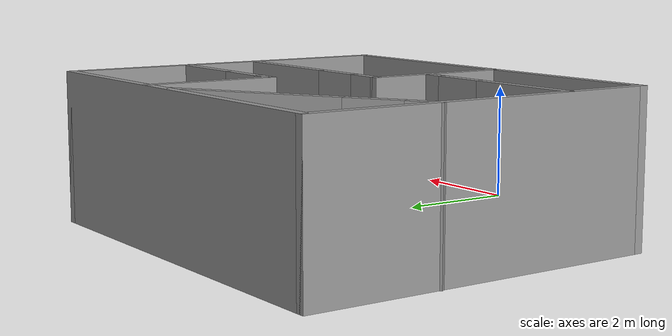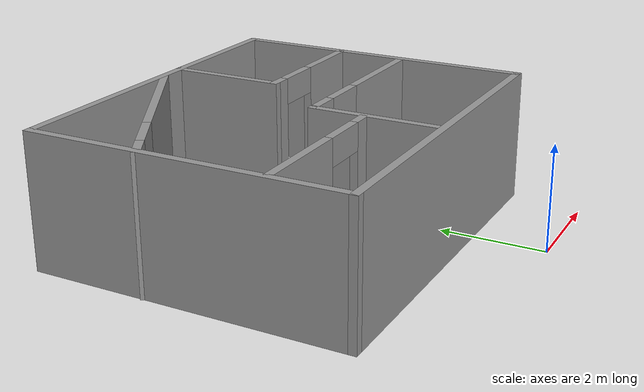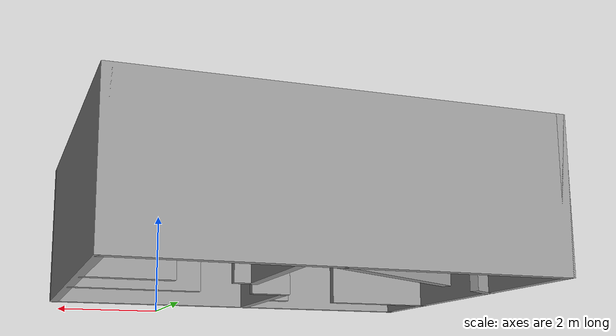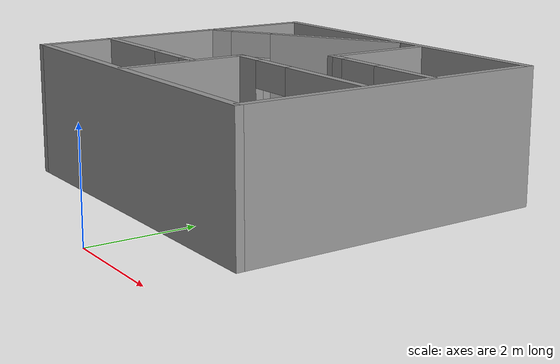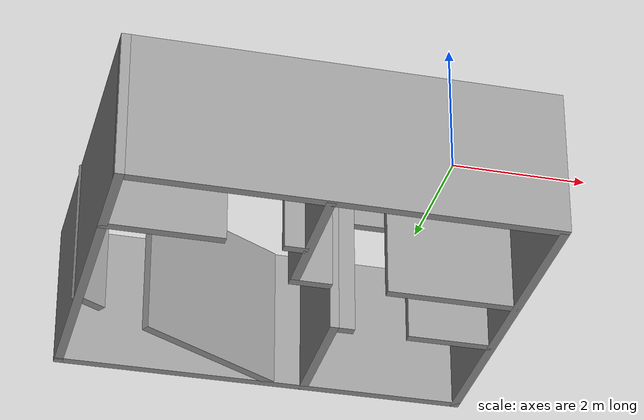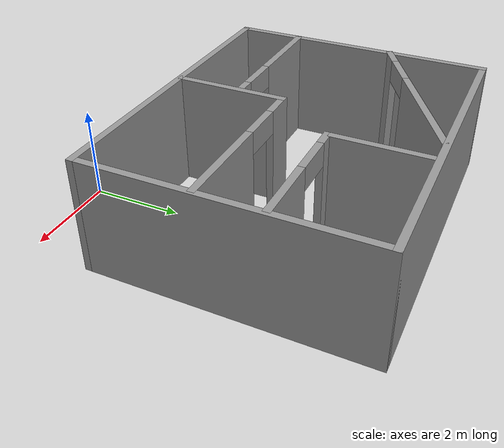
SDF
<?xml version='1.0'?>
<sdf version='1.6'>
  <model name='Untitled'>
    <pose frame=''>-1.23552 4.36471 0 0 -0 0</pose>
    <link name='Wall_12'>
      <collision name='Wall_12_Collision'>
        <geometry>
          <box>
            <size>7 0.15 2.5</size>
          </box>
        </geometry>
        <pose frame=''>0 0 1.25 0 -0 0</pose>
      </collision>
      <visual name='Wall_12_Visual'>
        <pose frame=''>0 0 1.25 0 -0 0</pose>
        <geometry>
          <box>
            <size>7 0.15 2.5</size>
          </box>
        </geometry>
        <material>
          <script>
            <uri>file://media/materials/scripts/gazebo.material</uri>
            <name>Gazebo/Grey</name>
          </script>
          <ambient>1 1 1 1</ambient>
        </material>
        <meta>
          <layer>0</layer>
        </meta>
      </visual>
      <pose frame=''>0.017489 2.925 0 0 -0 0</pose>
    </link>
    <link name='Wall_13'>
      <collision name='Wall_13_Collision'>
        <geometry>
          <box>
            <size>6 0.15 2.5</size>
          </box>
        </geometry>
        <pose frame=''>0 0 1.25 0 -0 0</pose>
      </collision>
      <visual name='Wall_13_Visual'>
        <pose frame=''>0 0 1.25 0 -0 0</pose>
        <geometry>
          <box>
            <size>6 0.15 2.5</size>
          </box>
        </geometry>
        <material>
          <script>
            <uri>file://media/materials/scripts/gazebo.material</uri>
            <name>Gazebo/Grey</name>
          </script>
          <ambient>1 1 1 1</ambient>
        </material>
        <meta>
          <layer>0</layer>
        </meta>
      </visual>
      <pose frame=''>3.44249 0 0 0 -0 -1.5708</pose>
    </link>
    <link name='Wall_14'>
      <collision name='Wall_14_Collision'>
        <geometry>
          <box>
            <size>7 0.15 2.5</size>
          </box>
        </geometry>
        <pose frame=''>0 0 1.25 0 -0 0</pose>
      </collision>
      <visual name='Wall_14_Visual'>
        <pose frame=''>0 0 1.25 0 -0 0</pose>
        <geometry>
          <box>
            <size>7 0.15 2.5</size>
          </box>
        </geometry>
        <material>
          <script>
            <uri>file://media/materials/scripts/gazebo.material</uri>
            <name>Gazebo/Grey</name>
          </script>
          <ambient>1 1 1 1</ambient>
        </material>
        <meta>
          <layer>0</layer>
        </meta>
      </visual>
      <pose frame=''>0.017489 -2.925 0 0 -0 3.14159</pose>
    </link>
    <link name='Wall_15'>
      <collision name='Wall_15_Collision'>
        <geometry>
          <box>
            <size>6 0.15 2.5</size>
          </box>
        </geometry>
        <pose frame=''>0 0 1.25 0 -0 0</pose>
      </collision>
      <visual name='Wall_15_Visual'>
        <pose frame=''>0 0 1.25 0 -0 0</pose>
        <geometry>
          <box>
            <size>6 0.15 2.5</size>
          </box>
        </geometry>
        <material>
          <script>
            <uri>file://media/materials/scripts/gazebo.material</uri>
            <name>Gazebo/Grey</name>
          </script>
          <ambient>1 1 1 1</ambient>
        </material>
        <meta>
          <layer>0</layer>
        </meta>
      </visual>
      <pose frame=''>-3.40751 0 0 0 -0 1.5708</pose>
    </link>
    <link name='Wall_22'>
      <pose frame=''>-1.63969 1.82728 0 0 -0 0.523599</pose>
      <visual name='Wall_22_Visual_0'>
        <pose frame=''>-1.84173 0 1.25 0 -0 0</pose>
        <geometry>
          <box>
            <size>0.566535 0.15 2.5</size>
          </box>
        </geometry>
        <material>
          <script>
            <uri>file://media/materials/scripts/gazebo.material</uri>
            <name>Gazebo/Grey</name>
          </script>
          <ambient>1 1 1 1</ambient>
        </material>
        <meta>
          <layer>0</layer>
        </meta>
      </visual>
      <collision name='Wall_22_Collision_0'>
        <geometry>
          <box>
            <size>0.566535 0.15 2.5</size>
          </box>
        </geometry>
        <pose frame=''>-1.84173 0 1.25 0 -0 0</pose>
      </collision>
      <visual name='Wall_22_Visual_1'>
        <pose frame=''>0.733268 0 1.25 0 -0 0</pose>
        <geometry>
          <box>
            <size>2.78347 0.15 2.5</size>
          </box>
        </geometry>
        <material>
          <script>
            <uri>file://media/materials/scripts/gazebo.material</uri>
            <name>Gazebo/Grey</name>
          </script>
          <ambient>1 1 1 1</ambient>
        </material>
        <meta>
          <layer>0</layer>
        </meta>
      </visual>
      <collision name='Wall_22_Collision_1'>
        <geometry>
          <box>
            <size>2.78347 0.15 2.5</size>
          </box>
        </geometry>
        <pose frame=''>0.733268 0 1.25 0 -0 0</pose>
      </collision>
      <visual name='Wall_22_Visual_2'>
        <pose frame=''>-1.10847 0 2.25 0 -0 0</pose>
        <geometry>
          <box>
            <size>0.9 0.15 0.5</size>
          </box>
        </geometry>
        <material>
          <script>
            <uri>file://media/materials/scripts/gazebo.material</uri>
            <name>Gazebo/Grey</name>
          </script>
          <ambient>1 1 1 1</ambient>
        </material>
        <meta>
          <layer>0</layer>
        </meta>
      </visual>
      <collision name='Wall_22_Collision_2'>
        <geometry>
          <box>
            <size>0.9 0.15 0.5</size>
          </box>
        </geometry>
        <pose frame=''>-1.10847 0 2.25 0 -0 0</pose>
      </collision>
    </link>
    <link name='Wall_26'>
      <collision name='Wall_26_Collision'>
        <geometry>
          <box>
            <size>2.25 0.15 2.5</size>
          </box>
        </geometry>
        <pose frame=''>0 0 1.25 0 -0 0</pose>
      </collision>
      <visual name='Wall_26_Visual'>
        <pose frame=''>0 0 1.25 0 -0 0</pose>
        <geometry>
          <box>
            <size>2.25 0.15 2.5</size>
          </box>
        </geometry>
        <material>
          <script>
            <uri>file://media/materials/scripts/gazebo.material</uri>
            <name>Gazebo/Grey</name>
          </script>
          <ambient>1 1 1 1</ambient>
        </material>
        <meta>
          <layer>0</layer>
        </meta>
      </visual>
      <pose frame=''>0.764062 1.86828 0 0 -0 -1.5708</pose>
    </link>
    <link name='Wall_27'>
      <pose frame=''>2.06406 0.818281 0 0 -0 0</pose>
      <visual name='Wall_27_Visual_0'>
        <pose frame=''>-1.16575 0 1.25 0 -0 0</pose>
        <geometry>
          <box>
            <size>0.4185 0.15 2.5</size>
          </box>
        </geometry>
        <material>
          <script>
            <uri>file://media/materials/scripts/gazebo.material</uri>
            <name>Gazebo/Grey</name>
          </script>
          <ambient>1 1 1 1</ambient>
        </material>
        <meta>
          <layer>0</layer>
        </meta>
      </visual>
      <collision name='Wall_27_Collision_0'>
        <geometry>
          <box>
            <size>0.4185 0.15 2.5</size>
          </box>
        </geometry>
        <pose frame=''>-1.16575 0 1.25 0 -0 0</pose>
      </collision>
      <visual name='Wall_27_Visual_1'>
        <pose frame=''>0.65925 0 1.25 0 -0 0</pose>
        <geometry>
          <box>
            <size>1.4315 0.15 2.5</size>
          </box>
        </geometry>
        <material>
          <script>
            <uri>file://media/materials/scripts/gazebo.material</uri>
            <name>Gazebo/Grey</name>
          </script>
          <ambient>1 1 1 1</ambient>
        </material>
        <meta>
          <layer>0</layer>
        </meta>
      </visual>
      <collision name='Wall_27_Collision_1'>
        <geometry>
          <box>
            <size>1.4315 0.15 2.5</size>
          </box>
        </geometry>
        <pose frame=''>0.65925 0 1.25 0 -0 0</pose>
      </collision>
      <visual name='Wall_27_Visual_2'>
        <pose frame=''>-0.5065 0 2.25 0 -0 0</pose>
        <geometry>
          <box>
            <size>0.9 0.15 0.5</size>
          </box>
        </geometry>
        <material>
          <script>
            <uri>file://media/materials/scripts/gazebo.material</uri>
            <name>Gazebo/Grey</name>
          </script>
          <ambient>1 1 1 1</ambient>
        </material>
        <meta>
          <layer>0</layer>
        </meta>
      </visual>
      <collision name='Wall_27_Collision_2'>
        <geometry>
          <box>
            <size>0.9 0.15 0.5</size>
          </box>
        </geometry>
        <pose frame=''>-0.5065 0 2.25 0 -0 0</pose>
      </collision>
    </link>
    <link name='Wall_29'>
      <pose frame=''>-1.85181 -1.49887 0 0 -0 0</pose>
      <visual name='Wall_29_Visual_0'>
        <pose frame=''>-0.642087 0 1.25 0 -0 0</pose>
        <geometry>
          <box>
            <size>1.96582 0.15 2.5</size>
          </box>
        </geometry>
        <material>
          <script>
            <uri>file://media/materials/scripts/gazebo.material</uri>
            <name>Gazebo/Grey</name>
          </script>
          <ambient>1 1 1 1</ambient>
        </material>
        <meta>
          <layer>0</layer>
        </meta>
      </visual>
      <collision name='Wall_29_Collision_0'>
        <geometry>
          <box>
            <size>1.96582 0.15 2.5</size>
          </box>
        </geometry>
        <pose frame=''>-0.642087 0 1.25 0 -0 0</pose>
      </collision>
      <visual name='Wall_29_Visual_1'>
        <pose frame=''>1.43291 0 1.25 0 -0 0</pose>
        <geometry>
          <box>
            <size>0.384175 0.15 2.5</size>
          </box>
        </geometry>
        <material>
          <script>
            <uri>file://media/materials/scripts/gazebo.material</uri>
            <name>Gazebo/Grey</name>
          </script>
          <ambient>1 1 1 1</ambient>
        </material>
        <meta>
          <layer>0</layer>
        </meta>
      </visual>
      <collision name='Wall_29_Collision_1'>
        <geometry>
          <box>
            <size>0.384175 0.15 2.5</size>
          </box>
        </geometry>
        <pose frame=''>1.43291 0 1.25 0 -0 0</pose>
      </collision>
      <visual name='Wall_29_Visual_2'>
        <pose frame=''>0.790825 0 2.25 0 -0 0</pose>
        <geometry>
          <box>
            <size>0.9 0.15 0.5</size>
          </box>
        </geometry>
        <material>
          <script>
            <uri>file://media/materials/scripts/gazebo.material</uri>
            <name>Gazebo/Grey</name>
          </script>
          <ambient>1 1 1 1</ambient>
        </material>
        <meta>
          <layer>0</layer>
        </meta>
      </visual>
      <collision name='Wall_29_Collision_2'>
        <geometry>
          <box>
            <size>0.9 0.15 0.5</size>
          </box>
        </geometry>
        <pose frame=''>0.790825 0 2.25 0 -0 0</pose>
      </collision>
    </link>
    <link name='Wall_31'>
      <collision name='Wall_31_Collision'>
        <geometry>
          <box>
            <size>2.5 0.15 2.5</size>
          </box>
        </geometry>
        <pose frame=''>0 0 1.25 0 -0 0</pose>
      </collision>
      <visual name='Wall_31_Visual'>
        <pose frame=''>0 0 1.25 0 -0 0</pose>
        <geometry>
          <box>
            <size>2.5 0.15 2.5</size>
          </box>
        </geometry>
        <material>
          <script>
            <uri>file://media/materials/scripts/gazebo.material</uri>
            <name>Gazebo/Grey</name>
          </script>
          <ambient>1 1 1 1</ambient>
        </material>
        <meta>
          <layer>0</layer>
        </meta>
      </visual>
      <pose frame=''>-0.214588 -1.69927 0 0 -0 1.5708</pose>
    </link>
    <link name='Wall_32'>
      <pose frame=''>1.58541 -0.524269 0 0 -0 0</pose>
      <visual name='Wall_32_Visual_0'>
        <pose frame=''>-1.5335 0 1.25 0 -0 0</pose>
        <geometry>
          <box>
            <size>0.683 0.15 2.5</size>
          </box>
        </geometry>
        <material>
          <script>
            <uri>file://media/materials/scripts/gazebo.material</uri>
            <name>Gazebo/Grey</name>
          </script>
          <ambient>1 1 1 1</ambient>
        </material>
        <meta>
          <layer>0</layer>
        </meta>
      </visual>
      <collision name='Wall_32_Collision_0'>
        <geometry>
          <box>
            <size>0.683 0.15 2.5</size>
          </box>
        </geometry>
        <pose frame=''>-1.5335 0 1.25 0 -0 0</pose>
      </collision>
      <visual name='Wall_32_Visual_1'>
        <pose frame=''>0.7915 0 1.25 0 -0 0</pose>
        <geometry>
          <box>
            <size>2.167 0.15 2.5</size>
          </box>
        </geometry>
        <material>
          <script>
            <uri>file://media/materials/scripts/gazebo.material</uri>
            <name>Gazebo/Grey</name>
          </script>
          <ambient>1 1 1 1</ambient>
        </material>
        <meta>
          <layer>0</layer>
        </meta>
      </visual>
      <collision name='Wall_32_Collision_1'>
        <geometry>
          <box>
            <size>2.167 0.15 2.5</size>
          </box>
        </geometry>
        <pose frame=''>0.7915 0 1.25 0 -0 0</pose>
      </collision>
      <visual name='Wall_32_Visual_2'>
        <pose frame=''>-0.742 0 2.25 0 -0 0</pose>
        <geometry>
          <box>
            <size>0.9 0.15 0.5</size>
          </box>
        </geometry>
        <material>
          <script>
            <uri>file://media/materials/scripts/gazebo.material</uri>
            <name>Gazebo/Grey</name>
          </script>
          <ambient>1 1 1 1</ambient>
        </material>
        <meta>
          <layer>0</layer>
        </meta>
      </visual>
      <collision name='Wall_32_Collision_2'>
        <geometry>
          <box>
            <size>0.9 0.15 0.5</size>
          </box>
        </geometry>
        <pose frame=''>-0.742 0 2.25 0 -0 0</pose>
      </collision>
    </link>
    <static>1</static>
  </model>
</sdf>
